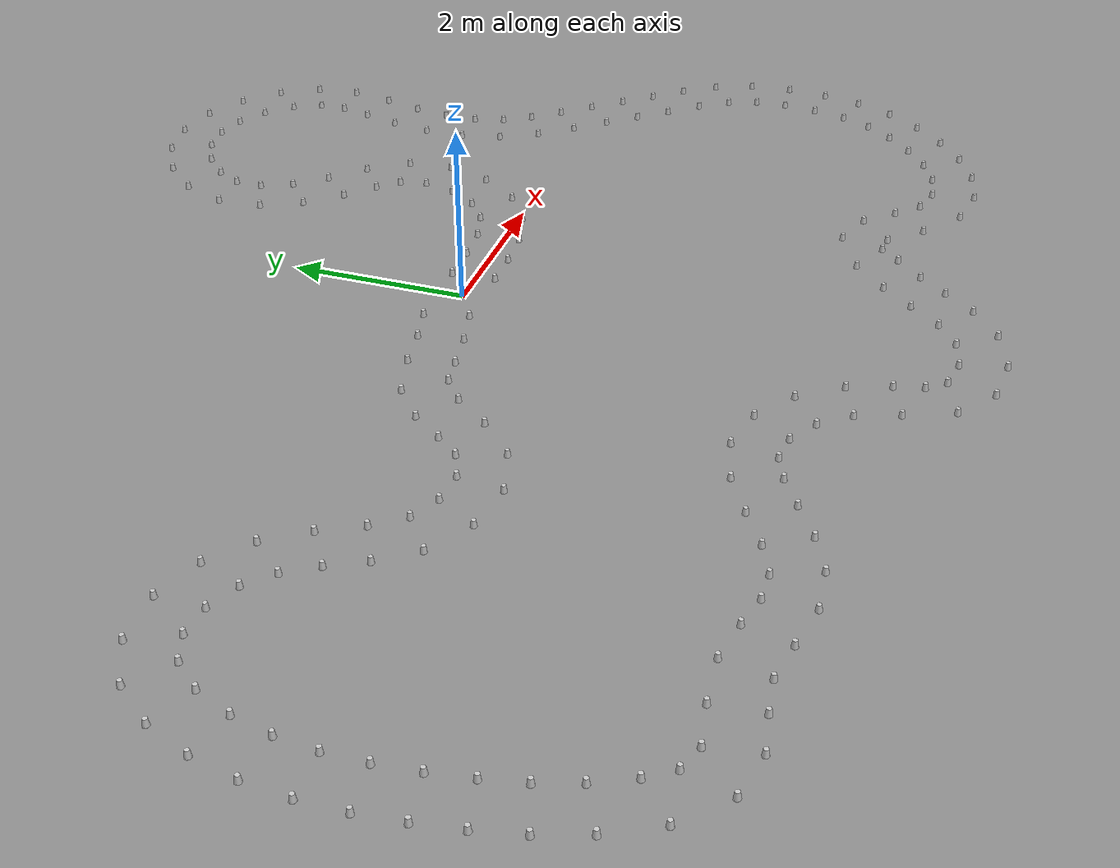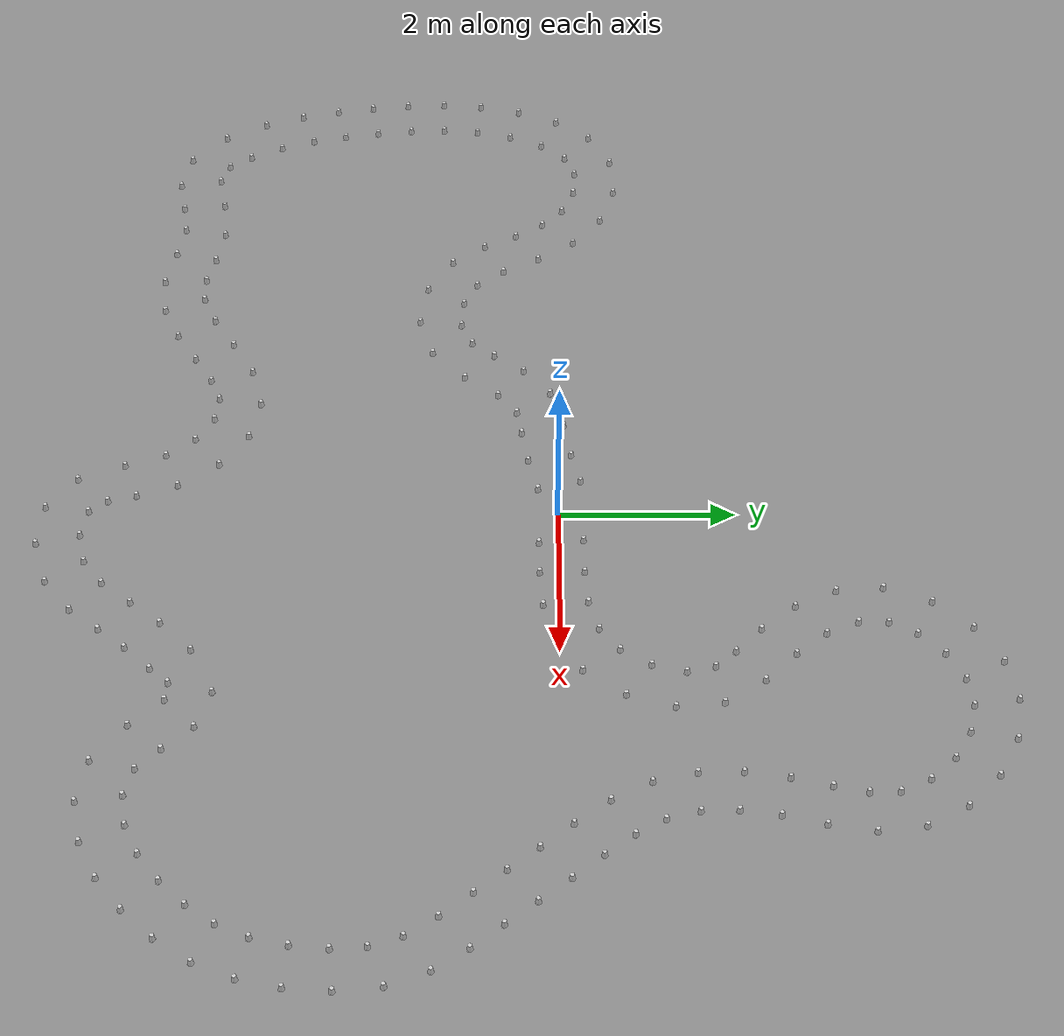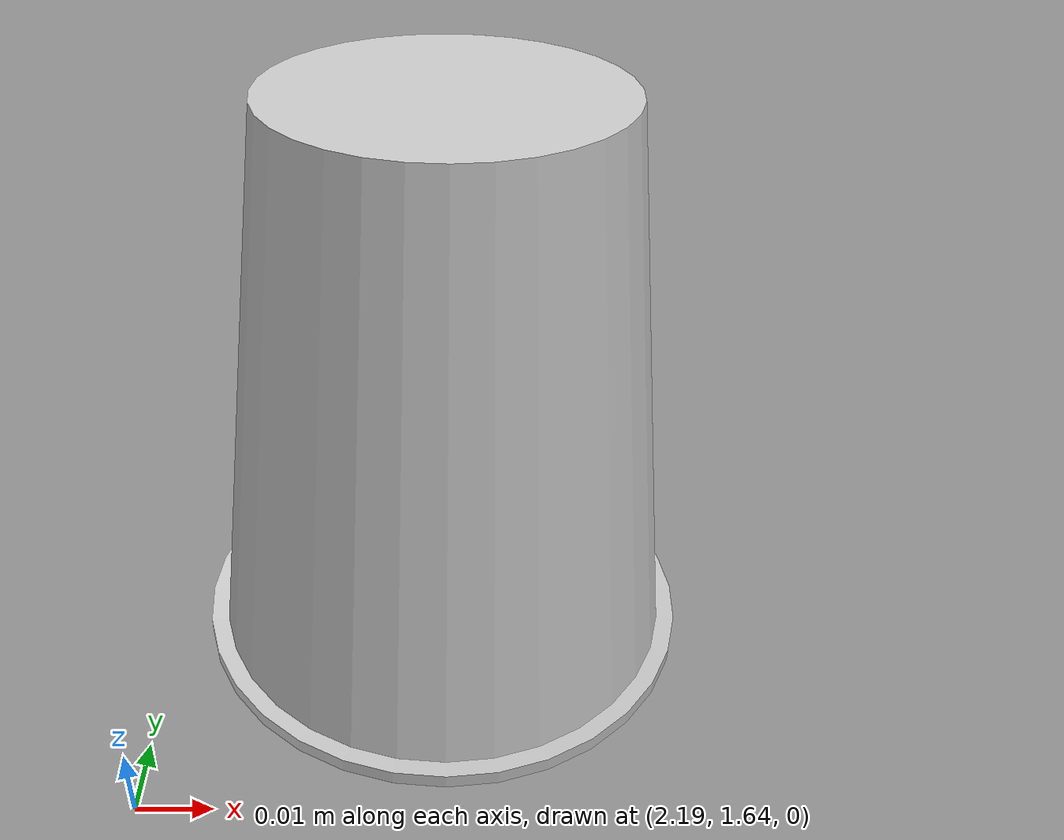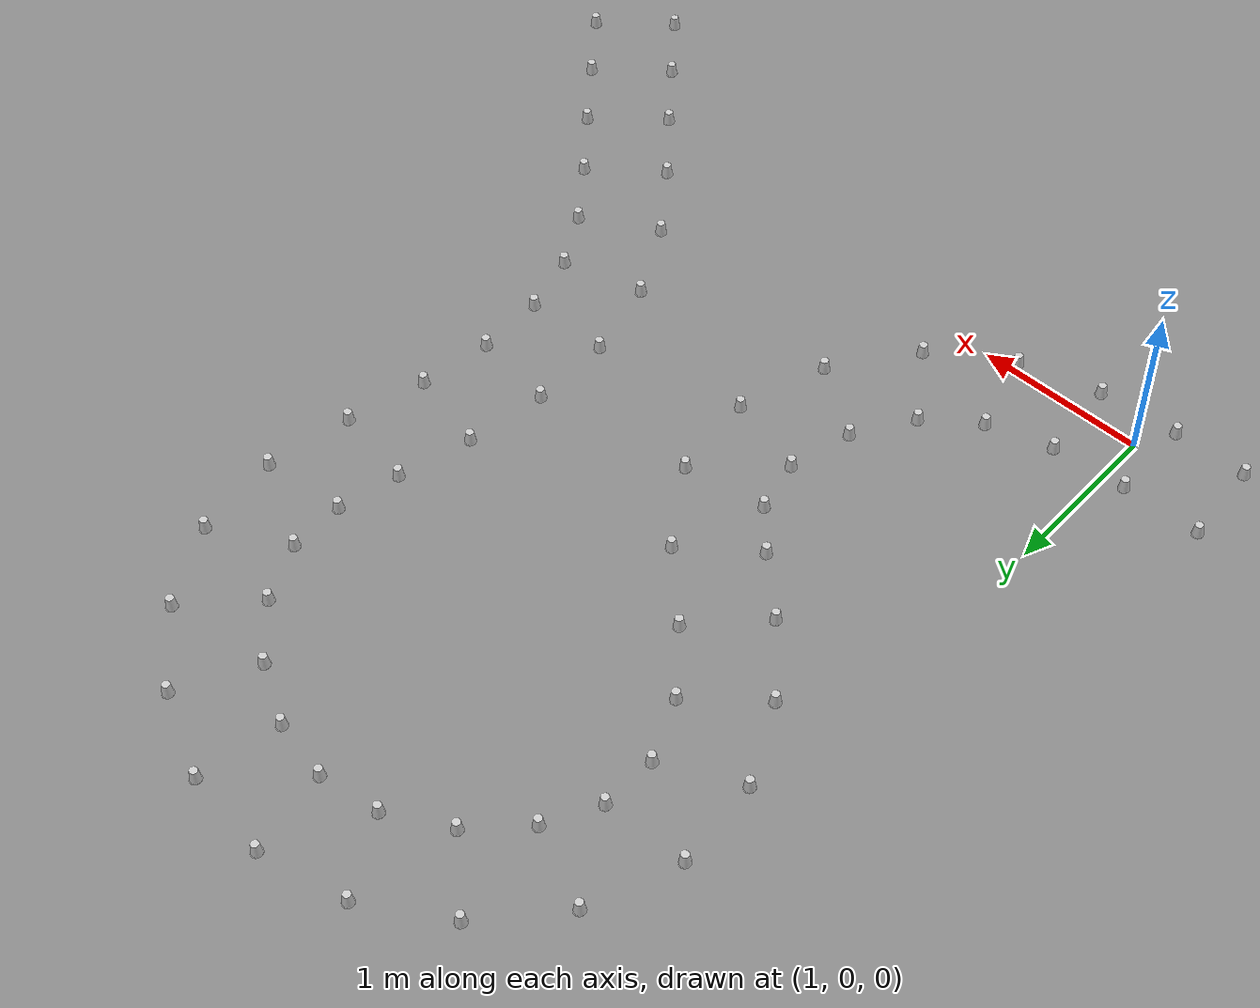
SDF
<?xml version='1.0' encoding='UTF-8'?>
<sdf version="1.4">
  <model name="some track">
    <include>
      <uri>model://cone_yellow</uri>
      <pose>0.4370971449995015 -0.219546363256597 0 0 0 0</pose>
      <name>cone_right_0</name>
    </include>
    <include>
      <uri>model://cone_yellow</uri>
      <pose>0.8763486299011619 -0.21545978795092433 0 0 0 0</pose>
      <name>cone_right_1</name>
    </include>
    <include>
      <uri>model://cone_yellow</uri>
      <pose>1.3507363224998683 -0.18035313321780128 0 0 0 0</pose>
      <name>cone_right_2</name>
    </include>
    <include>
      <uri>model://cone_yellow</uri>
      <pose>1.8294633291436035 -0.0530715182037442 0 0 0 0</pose>
      <name>cone_right_3</name>
    </include>
    <include>
      <uri>model://cone_yellow</uri>
      <pose>2.277477688645612 0.2399014609873968 0 0 0 0</pose>
      <name>cone_right_4</name>
    </include>
    <include>
      <uri>model://cone_yellow</uri>
      <pose>2.6163937052447777 0.7007270452248457 0 0 0 0</pose>
      <name>cone_right_5</name>
    </include>
    <include>
      <uri>model://cone_yellow</uri>
      <pose>2.781477481134751 1.2282500665447131 0 0 0 0</pose>
      <name>cone_right_6</name>
    </include>
    <include>
      <uri>model://cone_yellow</uri>
      <pose>2.723452077940603 1.754494080159789 0 0 0 0</pose>
      <name>cone_right_7</name>
    </include>
    <include>
      <uri>model://cone_yellow</uri>
      <pose>2.418454773327175 2.2085446686375767 0 0 0 0</pose>
      <name>cone_right_8</name>
    </include>
    <include>
      <uri>model://cone_yellow</uri>
      <pose>2.0510426803193895 2.5629058420568995 0 0 0 0</pose>
      <name>cone_right_9</name>
    </include>
    <include>
      <uri>model://cone_yellow</uri>
      <pose>1.7656172181613317 2.9090967996529904 0 0 0 0</pose>
      <name>cone_right_10</name>
    </include>
    <include>
      <uri>model://cone_yellow</uri>
      <pose>1.6069424835666697 3.2658785659750307 0 0 0 0</pose>
      <name>cone_right_11</name>
    </include>
    <include>
      <uri>model://cone_yellow</uri>
      <pose>1.613081551413104 3.5980396935760104 0 0 0 0</pose>
      <name>cone_right_12</name>
    </include>
    <include>
      <uri>model://cone_yellow</uri>
      <pose>1.7726470081528756 3.900833916670742 0 0 0 0</pose>
      <name>cone_right_13</name>
    </include>
    <include>
      <uri>model://cone_yellow</uri>
      <pose>2.0523398126668204 4.178343292589829 0 0 0 0</pose>
      <name>cone_right_14</name>
    </include>
    <include>
      <uri>model://cone_yellow</uri>
      <pose>2.4058578141753615 4.364570085238524 0 0 0 0</pose>
      <name>cone_right_15</name>
    </include>
    <include>
      <uri>model://cone_yellow</uri>
      <pose>2.770997700541004 4.41280751255816 0 0 0 0</pose>
      <name>cone_right_16</name>
    </include>
    <include>
      <uri>model://cone_yellow</uri>
      <pose>3.1296229120494234 4.335176732466422 0 0 0 0</pose>
      <name>cone_right_17</name>
    </include>
    <include>
      <uri>model://cone_yellow</uri>
      <pose>3.4695407062880657 4.142662207784323 0 0 0 0</pose>
      <name>cone_right_18</name>
    </include>
    <include>
      <uri>model://cone_yellow</uri>
      <pose>3.749855480552735 3.8581804649848057 0 0 0 0</pose>
      <name>cone_right_19</name>
    </include>
    <include>
      <uri>model://cone_yellow</uri>
      <pose>3.911501352667164 3.527172323594781 0 0 0 0</pose>
      <name>cone_right_20</name>
    </include>
    <include>
      <uri>model://cone_yellow</uri>
      <pose>3.9212863693499083 3.19825514367855 0 0 0 0</pose>
      <name>cone_right_21</name>
    </include>
    <include>
      <uri>model://cone_yellow</uri>
      <pose>3.839923552280029 2.8289131539980246 0 0 0 0</pose>
      <name>cone_right_22</name>
    </include>
    <include>
      <uri>model://cone_yellow</uri>
      <pose>3.728637530849026 2.391661034938421 0 0 0 0</pose>
      <name>cone_right_23</name>
    </include>
    <include>
      <uri>model://cone_yellow</uri>
      <pose>3.6554243686844803 1.9106629898730987 0 0 0 0</pose>
      <name>cone_right_24</name>
    </include>
    <include>
      <uri>model://cone_yellow</uri>
      <pose>3.6615208296562627 1.422831854115146 0 0 0 0</pose>
      <name>cone_right_25</name>
    </include>
    <include>
      <uri>model://cone_yellow</uri>
      <pose>3.7797123034835596 0.9461339291954743 0 0 0 0</pose>
      <name>cone_right_26</name>
    </include>
    <include>
      <uri>model://cone_yellow</uri>
      <pose>4.017873858760674 0.505553862635086 0 0 0 0</pose>
      <name>cone_right_27</name>
    </include>
    <include>
      <uri>model://cone_yellow</uri>
      <pose>4.315820177164706 0.11797048997262655 0 0 0 0</pose>
      <name>cone_right_28</name>
    </include>
    <include>
      <uri>model://cone_yellow</uri>
      <pose>4.615902405339011 -0.23503230920869206 0 0 0 0</pose>
      <name>cone_right_29</name>
    </include>
    <include>
      <uri>model://cone_yellow</uri>
      <pose>4.894303619056234 -0.5739482716128225 0 0 0 0</pose>
      <name>cone_right_30</name>
    </include>
    <include>
      <uri>model://cone_yellow</uri>
      <pose>5.1745829471993625 -0.916212887748211 0 0 0 0</pose>
      <name>cone_right_31</name>
    </include>
    <include>
      <uri>model://cone_yellow</uri>
      <pose>5.464051547055471 -1.2642267515163919 0 0 0 0</pose>
      <name>cone_right_32</name>
    </include>
    <include>
      <uri>model://cone_yellow</uri>
      <pose>5.702310139074916 -1.6129013982001204 0 0 0 0</pose>
      <name>cone_right_33</name>
    </include>
    <include>
      <uri>model://cone_yellow</uri>
      <pose>5.827054329918157 -1.9671133917722043 0 0 0 0</pose>
      <name>cone_right_34</name>
    </include>
    <include>
      <uri>model://cone_yellow</uri>
      <pose>5.851800392122823 -2.346505495485259 0 0 0 0</pose>
      <name>cone_right_35</name>
    </include>
    <include>
      <uri>model://cone_yellow</uri>
      <pose>5.8122402430756095 -2.7555609794024036 0 0 0 0</pose>
      <name>cone_right_36</name>
    </include>
    <include>
      <uri>model://cone_yellow</uri>
      <pose>5.718534809894664 -3.1570557593871236 0 0 0 0</pose>
      <name>cone_right_37</name>
    </include>
    <include>
      <uri>model://cone_yellow</uri>
      <pose>5.5550883760602785 -3.5121843861665747 0 0 0 0</pose>
      <name>cone_right_38</name>
    </include>
    <include>
      <uri>model://cone_yellow</uri>
      <pose>5.319802677398573 -3.827323832806244 0 0 0 0</pose>
      <name>cone_right_39</name>
    </include>
    <include>
      <uri>model://cone_yellow</uri>
      <pose>5.025869215826187 -4.11635086964156 0 0 0 0</pose>
      <name>cone_right_40</name>
    </include>
    <include>
      <uri>model://cone_yellow</uri>
      <pose>4.691869367166886 -4.360238701740455 0 0 0 0</pose>
      <name>cone_right_41</name>
    </include>
    <include>
      <uri>model://cone_yellow</uri>
      <pose>4.331167783828265 -4.521268396388543 0 0 0 0</pose>
      <name>cone_right_42</name>
    </include>
    <include>
      <uri>model://cone_yellow</uri>
      <pose>3.9499631691460815 -4.574259917191501 0 0 0 0</pose>
      <name>cone_right_43</name>
    </include>
    <include>
      <uri>model://cone_yellow</uri>
      <pose>3.60388984074528 -4.480246027238686 0 0 0 0</pose>
      <name>cone_right_44</name>
    </include>
    <include>
      <uri>model://cone_yellow</uri>
      <pose>3.345032683063508 -4.223837654056962 0 0 0 0</pose>
      <name>cone_right_45</name>
    </include>
    <include>
      <uri>model://cone_yellow</uri>
      <pose>3.044888956474182 -3.9004159855182485 0 0 0 0</pose>
      <name>cone_right_46</name>
    </include>
    <include>
      <uri>model://cone_yellow</uri>
      <pose>2.5732291620498944 -3.738437818925335 0 0 0 0</pose>
      <name>cone_right_47</name>
    </include>
    <include>
      <uri>model://cone_yellow</uri>
      <pose>1.9886735585783697 -4.009489971384205 0 0 0 0</pose>
      <name>cone_right_48</name>
    </include>
    <include>
      <uri>model://cone_yellow</uri>
      <pose>1.6065412310842682 -4.375972687563482 0 0 0 0</pose>
      <name>cone_right_49</name>
    </include>
    <include>
      <uri>model://cone_yellow</uri>
      <pose>1.3122388016154884 -4.725342374711458 0 0 0 0</pose>
      <name>cone_right_50</name>
    </include>
    <include>
      <uri>model://cone_yellow</uri>
      <pose>1.0290516392616111 -5.0665956601853726 0 0 0 0</pose>
      <name>cone_right_51</name>
    </include>
    <include>
      <uri>model://cone_yellow</uri>
      <pose>0.7069807013283582 -5.29524990236702 0 0 0 0</pose>
      <name>cone_right_52</name>
    </include>
    <include>
      <uri>model://cone_yellow</uri>
      <pose>0.31882585768301047 -5.376295984312923 0 0 0 0</pose>
      <name>cone_right_53</name>
    </include>
    <include>
      <uri>model://cone_yellow</uri>
      <pose>-0.0413120733266876 -5.310184696192091 0 0 0 0</pose>
      <name>cone_right_54</name>
    </include>
    <include>
      <uri>model://cone_yellow</uri>
      <pose>-0.1990877918304436 -5.107355798647113 0 0 0 0</pose>
      <name>cone_right_55</name>
    </include>
    <include>
      <uri>model://cone_yellow</uri>
      <pose>-0.2810667306803091 -4.790390891645069 0 0 0 0</pose>
      <name>cone_right_56</name>
    </include>
    <include>
      <uri>model://cone_yellow</uri>
      <pose>-0.4432636442871641 -4.335688427346842 0 0 0 0</pose>
      <name>cone_right_57</name>
    </include>
    <include>
      <uri>model://cone_yellow</uri>
      <pose>-0.7689855569228334 -3.882572631979114 0 0 0 0</pose>
      <name>cone_right_58</name>
    </include>
    <include>
      <uri>model://cone_yellow</uri>
      <pose>-1.218039514049003 -3.5672380388132767 0 0 0 0</pose>
      <name>cone_right_59</name>
    </include>
    <include>
      <uri>model://cone_yellow</uri>
      <pose>-1.7375194890880865 -3.456018499776102 0 0 0 0</pose>
      <name>cone_right_60</name>
    </include>
    <include>
      <uri>model://cone_yellow</uri>
      <pose>-2.2675406691833144 -3.5851385736639116 0 0 0 0</pose>
      <name>cone_right_61</name>
    </include>
    <include>
      <uri>model://cone_yellow</uri>
      <pose>-2.72788610384947 -3.8382831883515554 0 0 0 0</pose>
      <name>cone_right_62</name>
    </include>
    <include>
      <uri>model://cone_yellow</uri>
      <pose>-3.1361277298746115 -4.082926717383123 0 0 0 0</pose>
      <name>cone_right_63</name>
    </include>
    <include>
      <uri>model://cone_yellow</uri>
      <pose>-3.5094333548307772 -4.235883185376987 0 0 0 0</pose>
      <name>cone_right_64</name>
    </include>
    <include>
      <uri>model://cone_yellow</uri>
      <pose>-3.8423249175764744 -4.238513192302254 0 0 0 0</pose>
      <name>cone_right_65</name>
    </include>
    <include>
      <uri>model://cone_yellow</uri>
      <pose>-4.206005876966483 -4.147056102270071 0 0 0 0</pose>
      <name>cone_right_66</name>
    </include>
    <include>
      <uri>model://cone_yellow</uri>
      <pose>-4.663609928405755 -4.061881825629669 0 0 0 0</pose>
      <name>cone_right_67</name>
    </include>
    <include>
      <uri>model://cone_yellow</uri>
      <pose>-5.196374146288068 -4.103520840306573 0 0 0 0</pose>
      <name>cone_right_68</name>
    </include>
    <include>
      <uri>model://cone_yellow</uri>
      <pose>-5.660411369042896 -4.1803232376890795 0 0 0 0</pose>
      <name>cone_right_69</name>
    </include>
    <include>
      <uri>model://cone_yellow</uri>
      <pose>-5.940084262187414 -4.083114478876826 0 0 0 0</pose>
      <name>cone_right_70</name>
    </include>
    <include>
      <uri>model://cone_yellow</uri>
      <pose>-6.117803129486219 -3.824520179463282 0 0 0 0</pose>
      <name>cone_right_71</name>
    </include>
    <include>
      <uri>model://cone_yellow</uri>
      <pose>-6.2973051664430075 -3.4445714249379256 0 0 0 0</pose>
      <name>cone_right_72</name>
    </include>
    <include>
      <uri>model://cone_yellow</uri>
      <pose>-6.428430085808333 -3.044225143317079 0 0 0 0</pose>
      <name>cone_right_73</name>
    </include>
    <include>
      <uri>model://cone_yellow</uri>
      <pose>-6.5162924258359265 -2.6444571559690417 0 0 0 0</pose>
      <name>cone_right_74</name>
    </include>
    <include>
      <uri>model://cone_yellow</uri>
      <pose>-6.582630027929508 -2.2306443568694094 0 0 0 0</pose>
      <name>cone_right_75</name>
    </include>
    <include>
      <uri>model://cone_yellow</uri>
      <pose>-6.628219633944919 -1.8064822558900717 0 0 0 0</pose>
      <name>cone_right_76</name>
    </include>
    <include>
      <uri>model://cone_yellow</uri>
      <pose>-6.638786221716833 -1.382527717705424 0 0 0 0</pose>
      <name>cone_right_77</name>
    </include>
    <include>
      <uri>model://cone_yellow</uri>
      <pose>-6.601958704998418 -0.9606248073594641 0 0 0 0</pose>
      <name>cone_right_78</name>
    </include>
    <include>
      <uri>model://cone_yellow</uri>
      <pose>-6.505829070935588 -0.5413755070845268 0 0 0 0</pose>
      <name>cone_right_79</name>
    </include>
    <include>
      <uri>model://cone_yellow</uri>
      <pose>-6.338589217636073 -0.1459460912552445 0 0 0 0</pose>
      <name>cone_right_80</name>
    </include>
    <include>
      <uri>model://cone_yellow</uri>
      <pose>-6.096514042688396 0.14541363609352617 0 0 0 0</pose>
      <name>cone_right_81</name>
    </include>
    <include>
      <uri>model://cone_yellow</uri>
      <pose>-5.793265293165677 0.26662666692971154 0 0 0 0</pose>
      <name>cone_right_82</name>
    </include>
    <include>
      <uri>model://cone_yellow</uri>
      <pose>-5.440692763372822 0.2457549009442051 0 0 0 0</pose>
      <name>cone_right_83</name>
    </include>
    <include>
      <uri>model://cone_yellow</uri>
      <pose>-5.098494953245456 0.10128498338919872 0 0 0 0</pose>
      <name>cone_right_84</name>
    </include>
    <include>
      <uri>model://cone_yellow</uri>
      <pose>-4.842467663800198 -0.14580224069077738 0 0 0 0</pose>
      <name>cone_right_85</name>
    </include>
    <include>
      <uri>model://cone_yellow</uri>
      <pose>-4.636160302779229 -0.4735030351589803 0 0 0 0</pose>
      <name>cone_right_86</name>
    </include>
    <include>
      <uri>model://cone_yellow</uri>
      <pose>-4.442049285879038 -0.853137499066301 0 0 0 0</pose>
      <name>cone_right_87</name>
    </include>
    <include>
      <uri>model://cone_yellow</uri>
      <pose>-4.1581178630718165 -1.239824373732771 0 0 0 0</pose>
      <name>cone_right_88</name>
    </include>
    <include>
      <uri>model://cone_yellow</uri>
      <pose>-3.68083659982884 -1.5338234067855003 0 0 0 0</pose>
      <name>cone_right_89</name>
    </include>
    <include>
      <uri>model://cone_yellow</uri>
      <pose>-3.1160962142584356 -1.620363698841493 0 0 0 0</pose>
      <name>cone_right_90</name>
    </include>
    <include>
      <uri>model://cone_yellow</uri>
      <pose>-2.5845725973662406 -1.46367743961882 0 0 0 0</pose>
      <name>cone_right_91</name>
    </include>
    <include>
      <uri>model://cone_yellow</uri>
      <pose>-2.1749660559674924 -1.0764006958187307 0 0 0 0</pose>
      <name>cone_right_92</name>
    </include>
    <include>
      <uri>model://cone_yellow</uri>
      <pose>-1.8800993432259094 -0.684003821054653 0 0 0 0</pose>
      <name>cone_right_93</name>
    </include>
    <include>
      <uri>model://cone_yellow</uri>
      <pose>-1.593336893076609 -0.46402875287737255 0 0 0 0</pose>
      <name>cone_right_94</name>
    </include>
    <include>
      <uri>model://cone_yellow</uri>
      <pose>-1.264094147689278 -0.4091574371205077 0 0 0 0</pose>
      <name>cone_right_95</name>
    </include>
    <include>
      <uri>model://cone_yellow</uri>
      <pose>-0.8283130473682635 -0.33633404856639465 0 0 0 0</pose>
      <name>cone_right_96</name>
    </include>
    <include>
      <uri>model://cone_yellow</uri>
      <pose>-0.3788982502068079 -0.22652914176206945 0 0 0 0</pose>
      <name>cone_right_97</name>
    </include>
    <include>
      <uri>model://cone_blue</uri>
      <pose>0.4016282200196035 0.2791940054331356 0 0 0 0</pose>
      <name>cone_left_0</name>
    </include>
    <include>
      <uri>model://cone_blue</uri>
      <pose>0.8711739330674454 0.28451343384468253 0 0 0 0</pose>
      <name>cone_left_1</name>
    </include>
    <include>
      <uri>model://cone_blue</uri>
      <pose>1.313288275107525 0.31824253839046773 0 0 0 0</pose>
      <name>cone_left_2</name>
    </include>
    <include>
      <uri>model://cone_blue</uri>
      <pose>1.6964011435507436 0.42889783223801503 0 0 0 0</pose>
      <name>cone_left_3</name>
    </include>
    <include>
      <uri>model://cone_blue</uri>
      <pose>1.992999876299092 0.6510855733781094 0 0 0 0</pose>
      <name>cone_left_4</name>
    </include>
    <include>
      <uri>model://cone_blue</uri>
      <pose>2.2054861467445956 0.9856041737687486 0 0 0 0</pose>
      <name>cone_left_5</name>
    </include>
    <include>
      <uri>model://cone_blue</uri>
      <pose>2.300858276717125 1.3661093438711525 0 0 0 0</pose>
      <name>cone_left_6</name>
    </include>
    <include>
      <uri>model://cone_blue</uri>
      <pose>2.2293196758242186 1.6781188932291362 0 0 0 0</pose>
      <name>cone_left_7</name>
    </include>
    <include>
      <uri>model://cone_blue</uri>
      <pose>2.019157763141046 1.9076096297065503 0 0 0 0</pose>
      <name>cone_left_8</name>
    </include>
    <include>
      <uri>model://cone_blue</uri>
      <pose>1.7063179763206653 2.20073892135183 0 0 0 0</pose>
      <name>cone_left_9</name>
    </include>
    <include>
      <uri>model://cone_blue</uri>
      <pose>1.381040968456072 2.589564159438195 0 0 0 0</pose>
      <name>cone_left_10</name>
    </include>
    <include>
      <uri>model://cone_blue</uri>
      <pose>1.1543647719228753 3.053338181757663 0 0 0 0</pose>
      <name>cone_left_11</name>
    </include>
    <include>
      <uri>model://cone_blue</uri>
      <pose>1.1134920801589294 3.5777823439968013 0 0 0 0</pose>
      <name>cone_left_12</name>
    </include>
    <include>
      <uri>model://cone_blue</uri>
      <pose>1.3143963880207046 4.10084983890815 0 0 0 0</pose>
      <name>cone_left_13</name>
    </include>
    <include>
      <uri>model://cone_blue</uri>
      <pose>1.6874288701567566 4.520161963870987 0 0 0 0</pose>
      <name>cone_left_14</name>
    </include>
    <include>
      <uri>model://cone_blue</uri>
      <pose>2.1601916640858128 4.80005618455764 0 0 0 0</pose>
      <name>cone_left_15</name>
    </include>
    <include>
      <uri>model://cone_blue</uri>
      <pose>2.6859908473919716 4.905528361434783 0 0 0 0</pose>
      <name>cone_left_16</name>
    </include>
    <include>
      <uri>model://cone_blue</uri>
      <pose>3.2158070929371223 4.82769301337977 0 0 0 0</pose>
      <name>cone_left_17</name>
    </include>
    <include>
      <uri>model://cone_blue</uri>
      <pose>3.702444630824991 4.585105155445712 0 0 0 0</pose>
      <name>cone_left_18</name>
    </include>
    <include>
      <uri>model://cone_blue</uri>
      <pose>4.097141560249482 4.217891986691943 0 0 0 0</pose>
      <name>cone_left_19</name>
    </include>
    <include>
      <uri>model://cone_blue</uri>
      <pose>4.353200929827253 3.7614829796405496 0 0 0 0</pose>
      <name>cone_left_20</name>
    </include>
    <include>
      <uri>model://cone_blue</uri>
      <pose>4.419294607590898 3.2428398343705926 0 0 0 0</pose>
      <name>cone_left_21</name>
    </include>
    <include>
      <uri>model://cone_blue</uri>
      <pose>4.3308286604909325 2.733980679404549 0 0 0 0</pose>
      <name>cone_left_22</name>
    </include>
    <include>
      <uri>model://cone_blue</uri>
      <pose>4.213301861425344 2.2687769974599536 0 0 0 0</pose>
      <name>cone_left_23</name>
    </include>
    <include>
      <uri>model://cone_blue</uri>
      <pose>4.14992188788876 1.836688646342296 0 0 0 0</pose>
      <name>cone_left_24</name>
    </include>
    <include>
      <uri>model://cone_blue</uri>
      <pose>4.1614235132044834 1.4326962842196946 0 0 0 0</pose>
      <name>cone_left_25</name>
    </include>
    <include>
      <uri>model://cone_blue</uri>
      <pose>4.263247586889304 1.073388122453405 0 0 0 0</pose>
      <name>cone_left_26</name>
    </include>
    <include>
      <uri>model://cone_blue</uri>
      <pose>4.453849752609174 0.7503497367486045 0 0 0 0</pose>
      <name>cone_left_27</name>
    </include>
    <include>
      <uri>model://cone_blue</uri>
      <pose>4.710484676880486 0.4249557219693683 0 0 0 0</pose>
      <name>cone_left_28</name>
    </include>
    <include>
      <uri>model://cone_blue</uri>
      <pose>4.996687115424913 0.08900936182266783 0 0 0 0</pose>
      <name>cone_left_29</name>
    </include>
    <include>
      <uri>model://cone_blue</uri>
      <pose>5.280636349096803 -0.2565415582317092 0 0 0 0</pose>
      <name>cone_left_30</name>
    </include>
    <include>
      <uri>model://cone_blue</uri>
      <pose>5.561425814465696 -0.5994281090021945 0 0 0 0</pose>
      <name>cone_left_31</name>
    </include>
    <include>
      <uri>model://cone_blue</uri>
      <pose>5.8484517719520035 -0.9444823737714569 0 0 0 0</pose>
      <name>cone_left_32</name>
    </include>
    <include>
      <uri>model://cone_blue</uri>
      <pose>6.1144279939176425 -1.329777973312972 0 0 0 0</pose>
      <name>cone_left_33</name>
    </include>
    <include>
      <uri>model://cone_blue</uri>
      <pose>6.2953055431196905 -1.7917828429927867 0 0 0 0</pose>
      <name>cone_left_34</name>
    </include>
    <include>
      <uri>model://cone_blue</uri>
      <pose>6.349827821700484 -2.302135692823222 0 0 0 0</pose>
      <name>cone_left_35</name>
    </include>
    <include>
      <uri>model://cone_blue</uri>
      <pose>6.310348054630272 -2.799019097956074 0 0 0 0</pose>
      <name>cone_left_36</name>
    </include>
    <include>
      <uri>model://cone_blue</uri>
      <pose>6.206083405920217 -3.267944742219111 0 0 0 0</pose>
      <name>cone_left_37</name>
    </include>
    <include>
      <uri>model://cone_blue</uri>
      <pose>6.0118045666201025 -3.715679647242901 0 0 0 0</pose>
      <name>cone_left_38</name>
    </include>
    <include>
      <uri>model://cone_blue</uri>
      <pose>5.724530855864825 -4.120913855721517 0 0 0 0</pose>
      <name>cone_left_39</name>
    </include>
    <include>
      <uri>model://cone_blue</uri>
      <pose>5.379138987072071 -4.470187652246028 0 0 0 0</pose>
      <name>cone_left_40</name>
    </include>
    <include>
      <uri>model://cone_blue</uri>
      <pose>4.989367041038799 -4.762103273506618 0 0 0 0</pose>
      <name>cone_left_41</name>
    </include>
    <include>
      <uri>model://cone_blue</uri>
      <pose>4.540982710199852 -4.975116054388104 0 0 0 0</pose>
      <name>cone_left_42</name>
    </include>
    <include>
      <uri>model://cone_blue</uri>
      <pose>4.030542581004657 -5.067724159446728 0 0 0 0</pose>
      <name>cone_left_43</name>
    </include>
    <include>
      <uri>model://cone_blue</uri>
      <pose>3.496704966048382 -4.968622319288383 0 0 0 0</pose>
      <name>cone_left_44</name>
    </include>
    <include>
      <uri>model://cone_blue</uri>
      <pose>3.02241213495433 -4.605827159066895 0 0 0 0</pose>
      <name>cone_left_45</name>
    </include>
    <include>
      <uri>model://cone_blue</uri>
      <pose>2.6797233825118285 -4.241962620097986 0 0 0 0</pose>
      <name>cone_left_46</name>
    </include>
    <include>
      <uri>model://cone_blue</uri>
      <pose>2.4483411937013773 -4.222589649823226 0 0 0 0</pose>
      <name>cone_left_47</name>
    </include>
    <include>
      <uri>model://cone_blue</uri>
      <pose>2.2516857158489954 -4.434724736105826 0 0 0 0</pose>
      <name>cone_left_48</name>
    </include>
    <include>
      <uri>model://cone_blue</uri>
      <pose>1.9567932331905342 -4.732796923036006 0 0 0 0</pose>
      <name>cone_left_49</name>
    </include>
    <include>
      <uri>model://cone_blue</uri>
      <pose>1.6954736807920687 -5.046482573662807 0 0 0 0</pose>
      <name>cone_left_50</name>
    </include>
    <include>
      <uri>model://cone_blue</uri>
      <pose>1.413823731982193 -5.385892444797156 0 0 0 0</pose>
      <name>cone_left_51</name>
    </include>
    <include>
      <uri>model://cone_blue</uri>
      <pose>1.0039146818530111 -5.697531161201912 0 0 0 0</pose>
      <name>cone_left_52</name>
    </include>
    <include>
      <uri>model://cone_blue</uri>
      <pose>0.44339424862739335 -5.8605301383928765 0 0 0 0</pose>
      <name>cone_left_53</name>
    </include>
    <include>
      <uri>model://cone_blue</uri>
      <pose>-0.10706558390535462 -5.80584231577095 0 0 0 0</pose>
      <name>cone_left_54</name>
    </include>
    <include>
      <uri>model://cone_blue</uri>
      <pose>-0.5349031886775943 -5.477798802684699 0 0 0 0</pose>
      <name>cone_left_55</name>
    </include>
    <include>
      <uri>model://cone_blue</uri>
      <pose>-0.751871850445977 -4.958743317236253 0 0 0 0</pose>
      <name>cone_left_56</name>
    </include>
    <include>
      <uri>model://cone_blue</uri>
      <pose>-0.9141991072195228 -4.503675896381544 0 0 0 0</pose>
      <name>cone_left_57</name>
    </include>
    <include>
      <uri>model://cone_blue</uri>
      <pose>-1.1690242260328305 -4.182521066241909 0 0 0 0</pose>
      <name>cone_left_58</name>
    </include>
    <include>
      <uri>model://cone_blue</uri>
      <pose>-1.4945130115312075 -3.983846254274707 0 0 0 0</pose>
      <name>cone_left_59</name>
    </include>
    <include>
      <uri>model://cone_blue</uri>
      <pose>-1.822589761421759 -3.9487284030306182 0 0 0 0</pose>
      <name>cone_left_60</name>
    </include>
    <include>
      <uri>model://cone_blue</uri>
      <pose>-2.126483160449343 -4.064828868781257 0 0 0 0</pose>
      <name>cone_left_61</name>
    </include>
    <include>
      <uri>model://cone_blue</uri>
      <pose>-2.4815254490383225 -4.273376773412313 0 0 0 0</pose>
      <name>cone_left_62</name>
    </include>
    <include>
      <uri>model://cone_blue</uri>
      <pose>-2.8790433434512774 -4.51177123263001 0 0 0 0</pose>
      <name>cone_left_63</name>
    </include>
    <include>
      <uri>model://cone_blue</uri>
      <pose>-3.3168695225647 -4.6973148384990955 0 0 0 0</pose>
      <name>cone_left_64</name>
    </include>
    <include>
      <uri>model://cone_blue</uri>
      <pose>-3.8164378514551642 -4.737842602419094 0 0 0 0</pose>
      <name>cone_left_65</name>
    </include>
    <include>
      <uri>model://cone_blue</uri>
      <pose>-4.31590321195884 -4.634829180413563 0 0 0 0</pose>
      <name>cone_left_66</name>
    </include>
    <include>
      <uri>model://cone_blue</uri>
      <pose>-4.754913742067748 -4.553474760496288 0 0 0 0</pose>
      <name>cone_left_67</name>
    </include>
    <include>
      <uri>model://cone_blue</uri>
      <pose>-5.148349863404587 -4.601209164716065 0 0 0 0</pose>
      <name>cone_left_68</name>
    </include>
    <include>
      <uri>model://cone_blue</uri>
      <pose>-5.5781419663243526 -4.673508543001732 0 0 0 0</pose>
      <name>cone_left_69</name>
    </include>
    <include>
      <uri>model://cone_blue</uri>
      <pose>-6.068348972500717 -4.566382690213185 0 0 0 0</pose>
      <name>cone_left_70</name>
    </include>
    <include>
      <uri>model://cone_blue</uri>
      <pose>-6.489604738478246 -4.158830758941319 0 0 0 0</pose>
      <name>cone_left_71</name>
    </include>
    <include>
      <uri>model://cone_blue</uri>
      <pose>-6.744700408718823 -3.6678145596340785 0 0 0 0</pose>
      <name>cone_left_72</name>
    </include>
    <include>
      <uri>model://cone_blue</uri>
      <pose>-6.90267484845034 -3.202629389177555 0 0 0 0</pose>
      <name>cone_left_73</name>
    </include>
    <include>
      <uri>model://cone_blue</uri>
      <pose>-7.0042882627202125 -2.753361073178685 0 0 0 0</pose>
      <name>cone_left_74</name>
    </include>
    <include>
      <uri>model://cone_blue</uri>
      <pose>-7.0762426073158515 -2.310310042528669 0 0 0 0</pose>
      <name>cone_left_75</name>
    </include>
    <include>
      <uri>model://cone_blue</uri>
      <pose>-7.125313625079075 -1.8603112813161045 0 0 0 0</pose>
      <name>cone_left_76</name>
    </include>
    <include>
      <uri>model://cone_blue</uri>
      <pose>-7.138605972001045 -1.395952218658051 0 0 0 0</pose>
      <name>cone_left_77</name>
    </include>
    <include>
      <uri>model://cone_blue</uri>
      <pose>-7.100217526004932 -0.9189337137158691 0 0 0 0</pose>
      <name>cone_left_78</name>
    </include>
    <include>
      <uri>model://cone_blue</uri>
      <pose>-6.993779224891595 -0.43226708736217434 0 0 0 0</pose>
      <name>cone_left_79</name>
    </include>
    <include>
      <uri>model://cone_blue</uri>
      <pose>-6.800745190004662 0.04487282081597736 0 0 0 0</pose>
      <name>cone_left_80</name>
    </include>
    <include>
      <uri>model://cone_blue</uri>
      <pose>-6.488989876420735 0.45519213750397836 0 0 0 0</pose>
      <name>cone_left_81</name>
    </include>
    <include>
      <uri>model://cone_blue</uri>
      <pose>-6.013249450443035 0.7156333155964887 0 0 0 0</pose>
      <name>cone_left_82</name>
    </include>
    <include>
      <uri>model://cone_blue</uri>
      <pose>-5.445705295937549 0.745729774830171 0 0 0 0</pose>
      <name>cone_left_83</name>
    </include>
    <include>
      <uri>model://cone_blue</uri>
      <pose>-4.9246531902539505 0.5700909575832196 0 0 0 0</pose>
      <name>cone_left_84</name>
    </include>
    <include>
      <uri>model://cone_blue</uri>
      <pose>-4.5123690489476385 0.22974390091158445 0 0 0 0</pose>
      <name>cone_left_85</name>
    </include>
    <include>
      <uri>model://cone_blue</uri>
      <pose>-4.219153639650105 -0.19763088559343733 0 0 0 0</pose>
      <name>cone_left_86</name>
    </include>
    <include>
      <uri>model://cone_blue</uri>
      <pose>-3.997653317775456 -0.6239820419345103 0 0 0 0</pose>
      <name>cone_left_87</name>
    </include>
    <include>
      <uri>model://cone_blue</uri>
      <pose>-3.75718104191354 -0.941077548746302 0 0 0 0</pose>
      <name>cone_left_88</name>
    </include>
    <include>
      <uri>model://cone_blue</uri>
      <pose>-3.435020573486888 -1.098421889570123 0 0 0 0</pose>
      <name>cone_left_89</name>
    </include>
    <include>
      <uri>model://cone_blue</uri>
      <pose>-3.057117889341911 -1.1238543261303215 0 0 0 0</pose>
      <name>cone_left_90</name>
    </include>
    <include>
      <uri>model://cone_blue</uri>
      <pose>-2.7473289602934106 -0.9909086099285374 0 0 0 0</pose>
      <name>cone_left_91</name>
    </include>
    <include>
      <uri>model://cone_blue</uri>
      <pose>-2.53589695216265 -0.7303820717942997 0 0 0 0</pose>
      <name>cone_left_92</name>
    </include>
    <include>
      <uri>model://cone_blue</uri>
      <pose>-2.2809883184138 -0.3851927945298562 0 0 0 0</pose>
      <name>cone_left_93</name>
    </include>
    <include>
      <uri>model://cone_blue</uri>
      <pose>-1.9063738721410122 -0.0741469121381142 0 0 0 0</pose>
      <name>cone_left_94</name>
    </include>
    <include>
      <uri>model://cone_blue</uri>
      <pose>-1.3812612577328258 0.07692061044391701 0 0 0 0</pose>
      <name>cone_left_95</name>
    </include>
    <include>
      <uri>model://cone_blue</uri>
      <pose>-0.9114004926656128 0.15671409962398236 0 0 0 0</pose>
      <name>cone_left_96</name>
    </include>
    <include>
      <uri>model://cone_blue</uri>
      <pose>-0.49829321189420983 0.2590064832168437 0 0 0 0</pose>
      <name>cone_left_97</name>
    </include>
  </model>
</sdf>

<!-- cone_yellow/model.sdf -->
<sdf version='1.4'>
  <model name="cone_yellow">
    <link name="link">
    <collision name="collision"><geometry><box><size> 0.05 0.05 0.01</size>
             </box></geometry></collision>
      <visual name="visual">
        <geometry>
          <mesh>
            <uri>model://cup.dae</uri>
            <scale>1 1 1</scale>
          </mesh>
        </geometry>
        <material>
            <script>
              <uri>model://cone_yellow/materials/scripts</uri>
              <uri>model://cone_yellow/materials/textures</uri>
              <name>cone_yellow/Image</name>
            </script>
        </material>
      </visual>
    </link>
  </model>
</sdf>

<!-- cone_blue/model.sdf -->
<sdf version='1.4'>
  <model name="cone_blue">
    <link name="link">
    <collision name="collision"><geometry><box><size> 0.05 0.05 0.01</size>
             </box></geometry></collision>
      <visual name="visual">
        <geometry>
          <mesh>
            <uri>model://cup.dae</uri>
            <scale>1 1 1</scale>
          </mesh>
        </geometry>
        <material>
            <script>
              <uri>model://cone_blue/materials/scripts</uri>
              <uri>model://cone_blue/materials/textures</uri>
              <name>cone_blue/Image</name>
            </script>
        </material>
      </visual>
    </link>
  </model>
</sdf>
